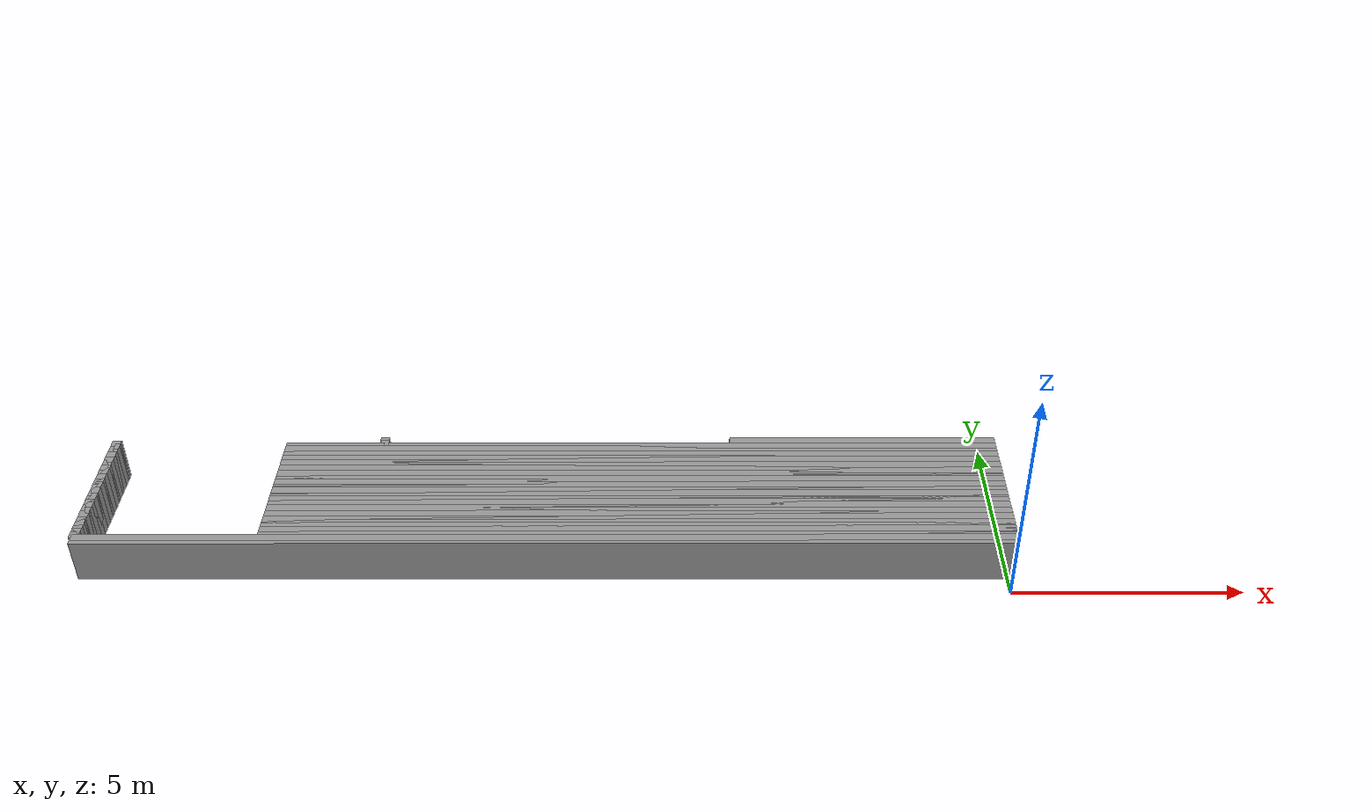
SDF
<sdf version="1.6">
 <world name="GridMap">
  <model name="GridMap">
   <link name="Wall_(99.5,0.0)">
    <collision name="Wall_(99.5,0.0)_Collision">
     <geometry><box><size>19.9 0.2 1.0</size></box></geometry>
     <pose>-9.95 0.0 0.5 0 -0 0</pose>
    </collision>
    <visual name="Wall_(99.5,0.0)_Visual">
     <geometry><box><size>19.9 0.2 1.0</size></box></geometry>
     <pose>-9.95 0.0 0.5 0 -0 0</pose>
     <material>
      <script><uri>file://media/materials/scripts/gazebo.material</uri><name>Gazebo/Grey</name></script>
      <ambient>1 1 1 1</ambient>
     </material>
     <meta><layer>0</layer></meta>
    </visual>
    <pose>0 0 0.5 0 -0 0</pose>
   </link>
   <link name="Wall_(99.5,1.0)">
    <collision name="Wall_(99.5,1.0)_Collision">
     <geometry><box><size>19.9 0.2 1.0</size></box></geometry>
     <pose>-9.95 0.1 0.5 0 -0 0</pose>
    </collision>
    <visual name="Wall_(99.5,1.0)_Visual">
     <geometry><box><size>19.9 0.2 1.0</size></box></geometry>
     <pose>-9.95 0.1 0.5 0 -0 0</pose>
     <material>
      <script><uri>file://media/materials/scripts/gazebo.material</uri><name>Gazebo/Grey</name></script>
      <ambient>1 1 1 1</ambient>
     </material>
     <meta><layer>0</layer></meta>
    </visual>
    <pose>0 0 0.5 0 -0 0</pose>
   </link>
   <link name="Wall_(80.0,2.0)">
    <collision name="Wall_(80.0,2.0)_Collision">
     <geometry><box><size>16.0 0.2 1.0</size></box></geometry>
     <pose>-8.0 0.2 0.5 0 -0 0</pose>
    </collision>
    <visual name="Wall_(80.0,2.0)_Visual">
     <geometry><box><size>16.0 0.2 1.0</size></box></geometry>
     <pose>-8.0 0.2 0.5 0 -0 0</pose>
     <material>
      <script><uri>file://media/materials/scripts/gazebo.material</uri><name>Gazebo/Grey</name></script>
      <ambient>1 1 1 1</ambient>
     </material>
     <meta><layer>0</layer></meta>
    </visual>
    <pose>0 0 0.5 0 -0 0</pose>
   </link>
   <link name="Wall_(198.5,2.0)">
    <collision name="Wall_(198.5,2.0)_Collision">
     <geometry><box><size>0.2 0.2 1.0</size></box></geometry>
     <pose>-19.85 0.2 0.5 0 -0 0</pose>
    </collision>
    <visual name="Wall_(198.5,2.0)_Visual">
     <geometry><box><size>0.2 0.2 1.0</size></box></geometry>
     <pose>-19.85 0.2 0.5 0 -0 0</pose>
     <material>
      <script><uri>file://media/materials/scripts/gazebo.material</uri><name>Gazebo/Grey</name></script>
      <ambient>1 1 1 1</ambient>
     </material>
     <meta><layer>0</layer></meta>
    </visual>
    <pose>0 0 0.5 0 -0 0</pose>
   </link>
   <link name="Wall_(80.0,3.0)">
    <collision name="Wall_(80.0,3.0)_Collision">
     <geometry><box><size>16.0 0.2 1.0</size></box></geometry>
     <pose>-8.0 0.3 0.5 0 -0 0</pose>
    </collision>
    <visual name="Wall_(80.0,3.0)_Visual">
     <geometry><box><size>16.0 0.2 1.0</size></box></geometry>
     <pose>-8.0 0.3 0.5 0 -0 0</pose>
     <material>
      <script><uri>file://media/materials/scripts/gazebo.material</uri><name>Gazebo/Grey</name></script>
      <ambient>1 1 1 1</ambient>
     </material>
     <meta><layer>0</layer></meta>
    </visual>
    <pose>0 0 0.5 0 -0 0</pose>
   </link>
   <link name="Wall_(198.5,3.0)">
    <collision name="Wall_(198.5,3.0)_Collision">
     <geometry><box><size>0.2 0.2 1.0</size></box></geometry>
     <pose>-19.85 0.3 0.5 0 -0 0</pose>
    </collision>
    <visual name="Wall_(198.5,3.0)_Visual">
     <geometry><box><size>0.2 0.2 1.0</size></box></geometry>
     <pose>-19.85 0.3 0.5 0 -0 0</pose>
     <material>
      <script><uri>file://media/materials/scripts/gazebo.material</uri><name>Gazebo/Grey</name></script>
      <ambient>1 1 1 1</ambient>
     </material>
     <meta><layer>0</layer></meta>
    </visual>
    <pose>0 0 0.5 0 -0 0</pose>
   </link>
   <link name="Wall_(80.0,4.0)">
    <collision name="Wall_(80.0,4.0)_Collision">
     <geometry><box><size>16.0 0.2 1.0</size></box></geometry>
     <pose>-8.0 0.4 0.5 0 -0 0</pose>
    </collision>
    <visual name="Wall_(80.0,4.0)_Visual">
     <geometry><box><size>16.0 0.2 1.0</size></box></geometry>
     <pose>-8.0 0.4 0.5 0 -0 0</pose>
     <material>
      <script><uri>file://media/materials/scripts/gazebo.material</uri><name>Gazebo/Grey</name></script>
      <ambient>1 1 1 1</ambient>
     </material>
     <meta><layer>0</layer></meta>
    </visual>
    <pose>0 0 0.5 0 -0 0</pose>
   </link>
   <link name="Wall_(198.5,4.0)">
    <collision name="Wall_(198.5,4.0)_Collision">
     <geometry><box><size>0.2 0.2 1.0</size></box></geometry>
     <pose>-19.85 0.4 0.5 0 -0 0</pose>
    </collision>
    <visual name="Wall_(198.5,4.0)_Visual">
     <geometry><box><size>0.2 0.2 1.0</size></box></geometry>
     <pose>-19.85 0.4 0.5 0 -0 0</pose>
     <material>
      <script><uri>file://media/materials/scripts/gazebo.material</uri><name>Gazebo/Grey</name></script>
      <ambient>1 1 1 1</ambient>
     </material>
     <meta><layer>0</layer></meta>
    </visual>
    <pose>0 0 0.5 0 -0 0</pose>
   </link>
   <link name="Wall_(80.0,5.0)">
    <collision name="Wall_(80.0,5.0)_Collision">
     <geometry><box><size>16.0 0.2 1.0</size></box></geometry>
     <pose>-8.0 0.5 0.5 0 -0 0</pose>
    </collision>
    <visual name="Wall_(80.0,5.0)_Visual">
     <geometry><box><size>16.0 0.2 1.0</size></box></geometry>
     <pose>-8.0 0.5 0.5 0 -0 0</pose>
     <material>
      <script><uri>file://media/materials/scripts/gazebo.material</uri><name>Gazebo/Grey</name></script>
      <ambient>1 1 1 1</ambient>
     </material>
     <meta><layer>0</layer></meta>
    </visual>
    <pose>0 0 0.5 0 -0 0</pose>
   </link>
   <link name="Wall_(198.5,5.0)">
    <collision name="Wall_(198.5,5.0)_Collision">
     <geometry><box><size>0.2 0.2 1.0</size></box></geometry>
     <pose>-19.85 0.5 0.5 0 -0 0</pose>
    </collision>
    <visual name="Wall_(198.5,5.0)_Visual">
     <geometry><box><size>0.2 0.2 1.0</size></box></geometry>
     <pose>-19.85 0.5 0.5 0 -0 0</pose>
     <material>
      <script><uri>file://media/materials/scripts/gazebo.material</uri><name>Gazebo/Grey</name></script>
      <ambient>1 1 1 1</ambient>
     </material>
     <meta><layer>0</layer></meta>
    </visual>
    <pose>0 0 0.5 0 -0 0</pose>
   </link>
   <link name="Wall_(80.0,6.0)">
    <collision name="Wall_(80.0,6.0)_Collision">
     <geometry><box><size>16.0 0.2 1.0</size></box></geometry>
     <pose>-8.0 0.6 0.5 0 -0 0</pose>
    </collision>
    <visual name="Wall_(80.0,6.0)_Visual">
     <geometry><box><size>16.0 0.2 1.0</size></box></geometry>
     <pose>-8.0 0.6 0.5 0 -0 0</pose>
     <material>
      <script><uri>file://media/materials/scripts/gazebo.material</uri><name>Gazebo/Grey</name></script>
      <ambient>1 1 1 1</ambient>
     </material>
     <meta><layer>0</layer></meta>
    </visual>
    <pose>0 0 0.5 0 -0 0</pose>
   </link>
   <link name="Wall_(198.5,6.0)">
    <collision name="Wall_(198.5,6.0)_Collision">
     <geometry><box><size>0.2 0.2 1.0</size></box></geometry>
     <pose>-19.85 0.6 0.5 0 -0 0</pose>
    </collision>
    <visual name="Wall_(198.5,6.0)_Visual">
     <geometry><box><size>0.2 0.2 1.0</size></box></geometry>
     <pose>-19.85 0.6 0.5 0 -0 0</pose>
     <material>
      <script><uri>file://media/materials/scripts/gazebo.material</uri><name>Gazebo/Grey</name></script>
      <ambient>1 1 1 1</ambient>
     </material>
     <meta><layer>0</layer></meta>
    </visual>
    <pose>0 0 0.5 0 -0 0</pose>
   </link>
   <link name="Wall_(80.0,7.0)">
    <collision name="Wall_(80.0,7.0)_Collision">
     <geometry><box><size>16.0 0.2 1.0</size></box></geometry>
     <pose>-8.0 0.7 0.5 0 -0 0</pose>
    </collision>
    <visual name="Wall_(80.0,7.0)_Visual">
     <geometry><box><size>16.0 0.2 1.0</size></box></geometry>
     <pose>-8.0 0.7 0.5 0 -0 0</pose>
     <material>
      <script><uri>file://media/materials/scripts/gazebo.material</uri><name>Gazebo/Grey</name></script>
      <ambient>1 1 1 1</ambient>
     </material>
     <meta><layer>0</layer></meta>
    </visual>
    <pose>0 0 0.5 0 -0 0</pose>
   </link>
   <link name="Wall_(198.5,7.0)">
    <collision name="Wall_(198.5,7.0)_Collision">
     <geometry><box><size>0.2 0.2 1.0</size></box></geometry>
     <pose>-19.85 0.7 0.5 0 -0 0</pose>
    </collision>
    <visual name="Wall_(198.5,7.0)_Visual">
     <geometry><box><size>0.2 0.2 1.0</size></box></geometry>
     <pose>-19.85 0.7 0.5 0 -0 0</pose>
     <material>
      <script><uri>file://media/materials/scripts/gazebo.material</uri><name>Gazebo/Grey</name></script>
      <ambient>1 1 1 1</ambient>
     </material>
     <meta><layer>0</layer></meta>
    </visual>
    <pose>0 0 0.5 0 -0 0</pose>
   </link>
   <link name="Wall_(80.0,8.0)">
    <collision name="Wall_(80.0,8.0)_Collision">
     <geometry><box><size>16.0 0.2 1.0</size></box></geometry>
     <pose>-8.0 0.8 0.5 0 -0 0</pose>
    </collision>
    <visual name="Wall_(80.0,8.0)_Visual">
     <geometry><box><size>16.0 0.2 1.0</size></box></geometry>
     <pose>-8.0 0.8 0.5 0 -0 0</pose>
     <material>
      <script><uri>file://media/materials/scripts/gazebo.material</uri><name>Gazebo/Grey</name></script>
      <ambient>1 1 1 1</ambient>
     </material>
     <meta><layer>0</layer></meta>
    </visual>
    <pose>0 0 0.5 0 -0 0</pose>
   </link>
   <link name="Wall_(198.5,8.0)">
    <collision name="Wall_(198.5,8.0)_Collision">
     <geometry><box><size>0.2 0.2 1.0</size></box></geometry>
     <pose>-19.85 0.8 0.5 0 -0 0</pose>
    </collision>
    <visual name="Wall_(198.5,8.0)_Visual">
     <geometry><box><size>0.2 0.2 1.0</size></box></geometry>
     <pose>-19.85 0.8 0.5 0 -0 0</pose>
     <material>
      <script><uri>file://media/materials/scripts/gazebo.material</uri><name>Gazebo/Grey</name></script>
      <ambient>1 1 1 1</ambient>
     </material>
     <meta><layer>0</layer></meta>
    </visual>
    <pose>0 0 0.5 0 -0 0</pose>
   </link>
   <link name="Wall_(80.0,9.0)">
    <collision name="Wall_(80.0,9.0)_Collision">
     <geometry><box><size>16.0 0.2 1.0</size></box></geometry>
     <pose>-8.0 0.9 0.5 0 -0 0</pose>
    </collision>
    <visual name="Wall_(80.0,9.0)_Visual">
     <geometry><box><size>16.0 0.2 1.0</size></box></geometry>
     <pose>-8.0 0.9 0.5 0 -0 0</pose>
     <material>
      <script><uri>file://media/materials/scripts/gazebo.material</uri><name>Gazebo/Grey</name></script>
      <ambient>1 1 1 1</ambient>
     </material>
     <meta><layer>0</layer></meta>
    </visual>
    <pose>0 0 0.5 0 -0 0</pose>
   </link>
   <link name="Wall_(198.5,9.0)">
    <collision name="Wall_(198.5,9.0)_Collision">
     <geometry><box><size>0.2 0.2 1.0</size></box></geometry>
     <pose>-19.85 0.9 0.5 0 -0 0</pose>
    </collision>
    <visual name="Wall_(198.5,9.0)_Visual">
     <geometry><box><size>0.2 0.2 1.0</size></box></geometry>
     <pose>-19.85 0.9 0.5 0 -0 0</pose>
     <material>
      <script><uri>file://media/materials/scripts/gazebo.material</uri><name>Gazebo/Grey</name></script>
      <ambient>1 1 1 1</ambient>
     </material>
     <meta><layer>0</layer></meta>
    </visual>
    <pose>0 0 0.5 0 -0 0</pose>
   </link>
   <link name="Wall_(80.0,10.0)">
    <collision name="Wall_(80.0,10.0)_Collision">
     <geometry><box><size>16.0 0.2 1.0</size></box></geometry>
     <pose>-8.0 1.0 0.5 0 -0 0</pose>
    </collision>
    <visual name="Wall_(80.0,10.0)_Visual">
     <geometry><box><size>16.0 0.2 1.0</size></box></geometry>
     <pose>-8.0 1.0 0.5 0 -0 0</pose>
     <material>
      <script><uri>file://media/materials/scripts/gazebo.material</uri><name>Gazebo/Grey</name></script>
      <ambient>1 1 1 1</ambient>
     </material>
     <meta><layer>0</layer></meta>
    </visual>
    <pose>0 0 0.5 0 -0 0</pose>
   </link>
   <link name="Wall_(198.5,10.0)">
    <collision name="Wall_(198.5,10.0)_Collision">
     <geometry><box><size>0.2 0.2 1.0</size></box></geometry>
     <pose>-19.85 1.0 0.5 0 -0 0</pose>
    </collision>
    <visual name="Wall_(198.5,10.0)_Visual">
     <geometry><box><size>0.2 0.2 1.0</size></box></geometry>
     <pose>-19.85 1.0 0.5 0 -0 0</pose>
     <material>
      <script><uri>file://media/materials/scripts/gazebo.material</uri><name>Gazebo/Grey</name></script>
      <ambient>1 1 1 1</ambient>
     </material>
     <meta><layer>0</layer></meta>
    </visual>
    <pose>0 0 0.5 0 -0 0</pose>
   </link>
   <link name="Wall_(80.0,11.0)">
    <collision name="Wall_(80.0,11.0)_Collision">
     <geometry><box><size>16.0 0.2 1.0</size></box></geometry>
     <pose>-8.0 1.1 0.5 0 -0 0</pose>
    </collision>
    <visual name="Wall_(80.0,11.0)_Visual">
     <geometry><box><size>16.0 0.2 1.0</size></box></geometry>
     <pose>-8.0 1.1 0.5 0 -0 0</pose>
     <material>
      <script><uri>file://media/materials/scripts/gazebo.material</uri><name>Gazebo/Grey</name></script>
      <ambient>1 1 1 1</ambient>
     </material>
     <meta><layer>0</layer></meta>
    </visual>
    <pose>0 0 0.5 0 -0 0</pose>
   </link>
   <link name="Wall_(198.5,11.0)">
    <collision name="Wall_(198.5,11.0)_Collision">
     <geometry><box><size>0.2 0.2 1.0</size></box></geometry>
     <pose>-19.85 1.1 0.5 0 -0 0</pose>
    </collision>
    <visual name="Wall_(198.5,11.0)_Visual">
     <geometry><box><size>0.2 0.2 1.0</size></box></geometry>
     <pose>-19.85 1.1 0.5 0 -0 0</pose>
     <material>
      <script><uri>file://media/materials/scripts/gazebo.material</uri><name>Gazebo/Grey</name></script>
      <ambient>1 1 1 1</ambient>
     </material>
     <meta><layer>0</layer></meta>
    </visual>
    <pose>0 0 0.5 0 -0 0</pose>
   </link>
   <link name="Wall_(80.0,12.0)">
    <collision name="Wall_(80.0,12.0)_Collision">
     <geometry><box><size>16.0 0.2 1.0</size></box></geometry>
     <pose>-8.0 1.2 0.5 0 -0 0</pose>
    </collision>
    <visual name="Wall_(80.0,12.0)_Visual">
     <geometry><box><size>16.0 0.2 1.0</size></box></geometry>
     <pose>-8.0 1.2 0.5 0 -0 0</pose>
     <material>
      <script><uri>file://media/materials/scripts/gazebo.material</uri><name>Gazebo/Grey</name></script>
      <ambient>1 1 1 1</ambient>
     </material>
     <meta><layer>0</layer></meta>
    </visual>
    <pose>0 0 0.5 0 -0 0</pose>
   </link>
   <link name="Wall_(198.5,12.0)">
    <collision name="Wall_(198.5,12.0)_Collision">
     <geometry><box><size>0.2 0.2 1.0</size></box></geometry>
     <pose>-19.85 1.2 0.5 0 -0 0</pose>
    </collision>
    <visual name="Wall_(198.5,12.0)_Visual">
     <geometry><box><size>0.2 0.2 1.0</size></box></geometry>
     <pose>-19.85 1.2 0.5 0 -0 0</pose>
     <material>
      <script><uri>file://media/materials/scripts/gazebo.material</uri><name>Gazebo/Grey</name></script>
      <ambient>1 1 1 1</ambient>
     </material>
     <meta><layer>0</layer></meta>
    </visual>
    <pose>0 0 0.5 0 -0 0</pose>
   </link>
   <link name="Wall_(80.0,13.0)">
    <collision name="Wall_(80.0,13.0)_Collision">
     <geometry><box><size>16.0 0.2 1.0</size></box></geometry>
     <pose>-8.0 1.3 0.5 0 -0 0</pose>
    </collision>
    <visual name="Wall_(80.0,13.0)_Visual">
     <geometry><box><size>16.0 0.2 1.0</size></box></geometry>
     <pose>-8.0 1.3 0.5 0 -0 0</pose>
     <material>
      <script><uri>file://media/materials/scripts/gazebo.material</uri><name>Gazebo/Grey</name></script>
      <ambient>1 1 1 1</ambient>
     </material>
     <meta><layer>0</layer></meta>
    </visual>
    <pose>0 0 0.5 0 -0 0</pose>
   </link>
   <link name="Wall_(198.5,13.0)">
    <collision name="Wall_(198.5,13.0)_Collision">
     <geometry><box><size>0.2 0.2 1.0</size></box></geometry>
     <pose>-19.85 1.3 0.5 0 -0 0</pose>
    </collision>
    <visual name="Wall_(198.5,13.0)_Visual">
     <geometry><box><size>0.2 0.2 1.0</size></box></geometry>
     <pose>-19.85 1.3 0.5 0 -0 0</pose>
     <material>
      <script><uri>file://media/materials/scripts/gazebo.material</uri><name>Gazebo/Grey</name></script>
      <ambient>1 1 1 1</ambient>
     </material>
     <meta><layer>0</layer></meta>
    </visual>
    <pose>0 0 0.5 0 -0 0</pose>
   </link>
   <link name="Wall_(80.0,14.0)">
    <collision name="Wall_(80.0,14.0)_Collision">
     <geometry><box><size>16.0 0.2 1.0</size></box></geometry>
     <pose>-8.0 1.4 0.5 0 -0 0</pose>
    </collision>
    <visual name="Wall_(80.0,14.0)_Visual">
     <geometry><box><size>16.0 0.2 1.0</size></box></geometry>
     <pose>-8.0 1.4 0.5 0 -0 0</pose>
     <material>
      <script><uri>file://media/materials/scripts/gazebo.material</uri><name>Gazebo/Grey</name></script>
      <ambient>1 1 1 1</ambient>
     </material>
     <meta><layer>0</layer></meta>
    </visual>
    <pose>0 0 0.5 0 -0 0</pose>
   </link>
   <link name="Wall_(198.5,14.0)">
    <collision name="Wall_(198.5,14.0)_Collision">
     <geometry><box><size>0.2 0.2 1.0</size></box></geometry>
     <pose>-19.85 1.4 0.5 0 -0 0</pose>
    </collision>
    <visual name="Wall_(198.5,14.0)_Visual">
     <geometry><box><size>0.2 0.2 1.0</size></box></geometry>
     <pose>-19.85 1.4 0.5 0 -0 0</pose>
     <material>
      <script><uri>file://media/materials/scripts/gazebo.material</uri><name>Gazebo/Grey</name></script>
      <ambient>1 1 1 1</ambient>
     </material>
     <meta><layer>0</layer></meta>
    </visual>
    <pose>0 0 0.5 0 -0 0</pose>
   </link>
   <link name="Wall_(80.0,15.0)">
    <collision name="Wall_(80.0,15.0)_Collision">
     <geometry><box><size>16.0 0.2 1.0</size></box></geometry>
     <pose>-8.0 1.5 0.5 0 -0 0</pose>
    </collision>
    <visual name="Wall_(80.0,15.0)_Visual">
     <geometry><box><size>16.0 0.2 1.0</size></box></geometry>
     <pose>-8.0 1.5 0.5 0 -0 0</pose>
     <material>
      <script><uri>file://media/materials/scripts/gazebo.material</uri><name>Gazebo/Grey</name></script>
      <ambient>1 1 1 1</ambient>
     </material>
     <meta><layer>0</layer></meta>
    </visual>
    <pose>0 0 0.5 0 -0 0</pose>
   </link>
   <link name="Wall_(198.5,15.0)">
    <collision name="Wall_(198.5,15.0)_Collision">
     <geometry><box><size>0.2 0.2 1.0</size></box></geometry>
     <pose>-19.85 1.5 0.5 0 -0 0</pose>
    </collision>
    <visual name="Wall_(198.5,15.0)_Visual">
     <geometry><box><size>0.2 0.2 1.0</size></box></geometry>
     <pose>-19.85 1.5 0.5 0 -0 0</pose>
     <material>
      <script><uri>file://media/materials/scripts/gazebo.material</uri><name>Gazebo/Grey</name></script>
      <ambient>1 1 1 1</ambient>
     </material>
     <meta><layer>0</layer></meta>
    </visual>
    <pose>0 0 0.5 0 -0 0</pose>
   </link>
   <link name="Wall_(80.0,16.0)">
    <collision name="Wall_(80.0,16.0)_Collision">
     <geometry><box><size>16.0 0.2 1.0</size></box></geometry>
     <pose>-8.0 1.6 0.5 0 -0 0</pose>
    </collision>
    <visual name="Wall_(80.0,16.0)_Visual">
     <geometry><box><size>16.0 0.2 1.0</size></box></geometry>
     <pose>-8.0 1.6 0.5 0 -0 0</pose>
     <material>
      <script><uri>file://media/materials/scripts/gazebo.material</uri><name>Gazebo/Grey</name></script>
      <ambient>1 1 1 1</ambient>
     </material>
     <meta><layer>0</layer></meta>
    </visual>
    <pose>0 0 0.5 0 -0 0</pose>
   </link>
   <link name="Wall_(198.5,16.0)">
    <collision name="Wall_(198.5,16.0)_Collision">
     <geometry><box><size>0.2 0.2 1.0</size></box></geometry>
     <pose>-19.85 1.6 0.5 0 -0 0</pose>
    </collision>
    <visual name="Wall_(198.5,16.0)_Visual">
     <geometry><box><size>0.2 0.2 1.0</size></box></geometry>
     <pose>-19.85 1.6 0.5 0 -0 0</pose>
     <material>
      <script><uri>file://media/materials/scripts/gazebo.material</uri><name>Gazebo/Grey</name></script>
      <ambient>1 1 1 1</ambient>
     </material>
     <meta><layer>0</layer></meta>
    </visual>
    <pose>0 0 0.5 0 -0 0</pose>
   </link>
   <link name="Wall_(80.0,17.0)">
    <collision name="Wall_(80.0,17.0)_Collision">
     <geometry><box><size>16.0 0.2 1.0</size></box></geometry>
     <pose>-8.0 1.7 0.5 0 -0 0</pose>
    </collision>
    <visual name="Wall_(80.0,17.0)_Visual">
     <geometry><box><size>16.0 0.2 1.0</size></box></geometry>
     <pose>-8.0 1.7 0.5 0 -0 0</pose>
     <material>
      <script><uri>file://media/materials/scripts/gazebo.material</uri><name>Gazebo/Grey</name></script>
      <ambient>1 1 1 1</ambient>
     </material>
     <meta><layer>0</layer></meta>
    </visual>
    <pose>0 0 0.5 0 -0 0</pose>
   </link>
   <link name="Wall_(198.5,17.0)">
    <collision name="Wall_(198.5,17.0)_Collision">
     <geometry><box><size>0.2 0.2 1.0</size></box></geometry>
     <pose>-19.85 1.7 0.5 0 -0 0</pose>
    </collision>
    <visual name="Wall_(198.5,17.0)_Visual">
     <geometry><box><size>0.2 0.2 1.0</size></box></geometry>
     <pose>-19.85 1.7 0.5 0 -0 0</pose>
     <material>
      <script><uri>file://media/materials/scripts/gazebo.material</uri><name>Gazebo/Grey</name></script>
      <ambient>1 1 1 1</ambient>
     </material>
     <meta><layer>0</layer></meta>
    </visual>
    <pose>0 0 0.5 0 -0 0</pose>
   </link>
   <link name="Wall_(80.0,18.0)">
    <collision name="Wall_(80.0,18.0)_Collision">
     <geometry><box><size>16.0 0.2 1.0</size></box></geometry>
     <pose>-8.0 1.8 0.5 0 -0 0</pose>
    </collision>
    <visual name="Wall_(80.0,18.0)_Visual">
     <geometry><box><size>16.0 0.2 1.0</size></box></geometry>
     <pose>-8.0 1.8 0.5 0 -0 0</pose>
     <material>
      <script><uri>file://media/materials/scripts/gazebo.material</uri><name>Gazebo/Grey</name></script>
      <ambient>1 1 1 1</ambient>
     </material>
     <meta><layer>0</layer></meta>
    </visual>
    <pose>0 0 0.5 0 -0 0</pose>
   </link>
   <link name="Wall_(198.5,18.0)">
    <collision name="Wall_(198.5,18.0)_Collision">
     <geometry><box><size>0.2 0.2 1.0</size></box></geometry>
     <pose>-19.85 1.8 0.5 0 -0 0</pose>
    </collision>
    <visual name="Wall_(198.5,18.0)_Visual">
     <geometry><box><size>0.2 0.2 1.0</size></box></geometry>
     <pose>-19.85 1.8 0.5 0 -0 0</pose>
     <material>
      <script><uri>file://media/materials/scripts/gazebo.material</uri><name>Gazebo/Grey</name></script>
      <ambient>1 1 1 1</ambient>
     </material>
     <meta><layer>0</layer></meta>
    </visual>
    <pose>0 0 0.5 0 -0 0</pose>
   </link>
   <link name="Wall_(80.0,19.0)">
    <collision name="Wall_(80.0,19.0)_Collision">
     <geometry><box><size>16.0 0.2 1.0</size></box></geometry>
     <pose>-8.0 1.9 0.5 0 -0 0</pose>
    </collision>
    <visual name="Wall_(80.0,19.0)_Visual">
     <geometry><box><size>16.0 0.2 1.0</size></box></geometry>
     <pose>-8.0 1.9 0.5 0 -0 0</pose>
     <material>
      <script><uri>file://media/materials/scripts/gazebo.material</uri><name>Gazebo/Grey</name></script>
      <ambient>1 1 1 1</ambient>
     </material>
     <meta><layer>0</layer></meta>
    </visual>
    <pose>0 0 0.5 0 -0 0</pose>
   </link>
   <link name="Wall_(198.5,19.0)">
    <collision name="Wall_(198.5,19.0)_Collision">
     <geometry><box><size>0.2 0.2 1.0</size></box></geometry>
     <pose>-19.85 1.9 0.5 0 -0 0</pose>
    </collision>
    <visual name="Wall_(198.5,19.0)_Visual">
     <geometry><box><size>0.2 0.2 1.0</size></box></geometry>
     <pose>-19.85 1.9 0.5 0 -0 0</pose>
     <material>
      <script><uri>file://media/materials/scripts/gazebo.material</uri><name>Gazebo/Grey</name></script>
      <ambient>1 1 1 1</ambient>
     </material>
     <meta><layer>0</layer></meta>
    </visual>
    <pose>0 0 0.5 0 -0 0</pose>
   </link>
   <link name="Wall_(80.0,20.0)">
    <collision name="Wall_(80.0,20.0)_Collision">
     <geometry><box><size>16.0 0.2 1.0</size></box></geometry>
     <pose>-8.0 2.0 0.5 0 -0 0</pose>
    </collision>
    <visual name="Wall_(80.0,20.0)_Visual">
     <geometry><box><size>16.0 0.2 1.0</size></box></geometry>
     <pose>-8.0 2.0 0.5 0 -0 0</pose>
     <material>
      <script><uri>file://media/materials/scripts/gazebo.material</uri><name>Gazebo/Grey</name></script>
      <ambient>1 1 1 1</ambient>
     </material>
     <meta><layer>0</layer></meta>
    </visual>
    <pose>0 0 0.5 0 -0 0</pose>
   </link>
   <link name="Wall_(198.5,20.0)">
    <collision name="Wall_(198.5,20.0)_Collision">
     <geometry><box><size>0.2 0.2 1.0</size></box></geometry>
     <pose>-19.85 2.0 0.5 0 -0 0</pose>
    </collision>
    <visual name="Wall_(198.5,20.0)_Visual">
     <geometry><box><size>0.2 0.2 1.0</size></box></geometry>
     <pose>-19.85 2.0 0.5 0 -0 0</pose>
     <material>
      <script><uri>file://media/materials/scripts/gazebo.material</uri><name>Gazebo/Grey</name></script>
      <ambient>1 1 1 1</ambient>
     </material>
     <meta><layer>0</layer></meta>
    </visual>
    <pose>0 0 0.5 0 -0 0</pose>
   </link>
   <link name="Wall_(80.0,21.0)">
    <collision name="Wall_(80.0,21.0)_Collision">
     <geometry><box><size>16.0 0.2 1.0</size></box></geometry>
     <pose>-8.0 2.1 0.5 0 -0 0</pose>
    </collision>
    <visual name="Wall_(80.0,21.0)_Visual">
     <geometry><box><size>16.0 0.2 1.0</size></box></geometry>
     <pose>-8.0 2.1 0.5 0 -0 0</pose>
     <material>
      <script><uri>file://media/materials/scripts/gazebo.material</uri><name>Gazebo/Grey</name></script>
      <ambient>1 1 1 1</ambient>
     </material>
     <meta><layer>0</layer></meta>
    </visual>
    <pose>0 0 0.5 0 -0 0</pose>
   </link>
   <link name="Wall_(198.5,21.0)">
    <collision name="Wall_(198.5,21.0)_Collision">
     <geometry><box><size>0.2 0.2 1.0</size></box></geometry>
     <pose>-19.85 2.1 0.5 0 -0 0</pose>
    </collision>
    <visual name="Wall_(198.5,21.0)_Visual">
     <geometry><box><size>0.2 0.2 1.0</size></box></geometry>
     <pose>-19.85 2.1 0.5 0 -0 0</pose>
     <material>
      <script><uri>file://media/materials/scripts/gazebo.material</uri><name>Gazebo/Grey</name></script>
      <ambient>1 1 1 1</ambient>
     </material>
     <meta><layer>0</layer></meta>
    </visual>
    <pose>0 0 0.5 0 -0 0</pose>
   </link>
   <link name="Wall_(80.0,22.0)">
    <collision name="Wall_(80.0,22.0)_Collision">
     <geometry><box><size>16.0 0.2 1.0</size></box></geometry>
     <pose>-8.0 2.2 0.5 0 -0 0</pose>
    </collision>
    <visual name="Wall_(80.0,22.0)_Visual">
     <geometry><box><size>16.0 0.2 1.0</size></box></geometry>
     <pose>-8.0 2.2 0.5 0 -0 0</pose>
     <material>
      <script><uri>file://media/materials/scripts/gazebo.material</uri><name>Gazebo/Grey</name></script>
      <ambient>1 1 1 1</ambient>
     </material>
     <meta><layer>0</layer></meta>
    </visual>
    <pose>0 0 0.5 0 -0 0</pose>
   </link>
   <link name="Wall_(198.5,22.0)">
    <collision name="Wall_(198.5,22.0)_Collision">
     <geometry><box><size>0.2 0.2 1.0</size></box></geometry>
     <pose>-19.85 2.2 0.5 0 -0 0</pose>
    </collision>
    <visual name="Wall_(198.5,22.0)_Visual">
     <geometry><box><size>0.2 0.2 1.0</size></box></geometry>
     <pose>-19.85 2.2 0.5 0 -0 0</pose>
     <material>
      <script><uri>file://media/materials/scripts/gazebo.material</uri><name>Gazebo/Grey</name></script>
      <ambient>1 1 1 1</ambient>
     </material>
     <meta><layer>0</layer></meta>
    </visual>
    <pose>0 0 0.5 0 -0 0</pose>
   </link>
   <link name="Wall_(80.0,23.0)">
    <collision name="Wall_(80.0,23.0)_Collision">
     <geometry><box><size>16.0 0.2 1.0</size></box></geometry>
     <pose>-8.0 2.3 0.5 0 -0 0</pose>
    </collision>
    <visual name="Wall_(80.0,23.0)_Visual">
     <geometry><box><size>16.0 0.2 1.0</size></box></geometry>
     <pose>-8.0 2.3 0.5 0 -0 0</pose>
     <material>
      <script><uri>file://media/materials/scripts/gazebo.material</uri><name>Gazebo/Grey</name></script>
      <ambient>1 1 1 1</ambient>
     </material>
     <meta><layer>0</layer></meta>
    </visual>
    <pose>0 0 0.5 0 -0 0</pose>
   </link>
   <link name="Wall_(198.5,23.0)">
    <collision name="Wall_(198.5,23.0)_Collision">
     <geometry><box><size>0.2 0.2 1.0</size></box></geometry>
     <pose>-19.85 2.3 0.5 0 -0 0</pose>
    </collision>
    <visual name="Wall_(198.5,23.0)_Visual">
     <geometry><box><size>0.2 0.2 1.0</size></box></geometry>
     <pose>-19.85 2.3 0.5 0 -0 0</pose>
     <material>
      <script><uri>file://media/materials/scripts/gazebo.material</uri><name>Gazebo/Grey</name></script>
      <ambient>1 1 1 1</ambient>
     </material>
     <meta><layer>0</layer></meta>
    </visual>
    <pose>0 0 0.5 0 -0 0</pose>
   </link>
   <link name="Wall_(80.0,24.0)">
    <collision name="Wall_(80.0,24.0)_Collision">
     <geometry><box><size>16.0 0.2 1.0</size></box></geometry>
     <pose>-8.0 2.4 0.5 0 -0 0</pose>
    </collision>
    <visual name="Wall_(80.0,24.0)_Visual">
     <geometry><box><size>16.0 0.2 1.0</size></box></geometry>
     <pose>-8.0 2.4 0.5 0 -0 0</pose>
     <material>
      <script><uri>file://media/materials/scripts/gazebo.material</uri><name>Gazebo/Grey</name></script>
      <ambient>1 1 1 1</ambient>
     </material>
     <meta><layer>0</layer></meta>
    </visual>
    <pose>0 0 0.5 0 -0 0</pose>
   </link>
   <link name="Wall_(198.5,24.0)">
    <collision name="Wall_(198.5,24.0)_Collision">
     <geometry><box><size>0.2 0.2 1.0</size></box></geometry>
     <pose>-19.85 2.4 0.5 0 -0 0</pose>
    </collision>
    <visual name="Wall_(198.5,24.0)_Visual">
     <geometry><box><size>0.2 0.2 1.0</size></box></geometry>
     <pose>-19.85 2.4 0.5 0 -0 0</pose>
     <material>
      <script><uri>file://media/materials/scripts/gazebo.material</uri><name>Gazebo/Grey</name></script>
      <ambient>1 1 1 1</ambient>
     </material>
     <meta><layer>0</layer></meta>
    </visual>
    <pose>0 0 0.5 0 -0 0</pose>
   </link>
   <link name="Wall_(80.0,25.0)">
    <collision name="Wall_(80.0,25.0)_Collision">
     <geometry><box><size>16.0 0.2 1.0</size></box></geometry>
     <pose>-8.0 2.5 0.5 0 -0 0</pose>
    </collision>
    <visual name="Wall_(80.0,25.0)_Visual">
     <geometry><box><size>16.0 0.2 1.0</size></box></geometry>
     <pose>-8.0 2.5 0.5 0 -0 0</pose>
     <material>
      <script><uri>file://media/materials/scripts/gazebo.material</uri><name>Gazebo/Grey</name></script>
      <ambient>1 1 1 1</ambient>
     </material>
     <meta><layer>0</layer></meta>
    </visual>
    <pose>0 0 0.5 0 -0 0</pose>
   </link>
   <link name="Wall_(198.5,25.0)">
    <collision name="Wall_(198.5,25.0)_Collision">
     <geometry><box><size>0.2 0.2 1.0</size></box></geometry>
     <pose>-19.85 2.5 0.5 0 -0 0</pose>
    </collision>
    <visual name="Wall_(198.5,25.0)_Visual">
     <geometry><box><size>0.2 0.2 1.0</size></box></geometry>
     <pose>-19.85 2.5 0.5 0 -0 0</pose>
     <material>
      <script><uri>file://media/materials/scripts/gazebo.material</uri><name>Gazebo/Grey</name></script>
      <ambient>1 1 1 1</ambient>
     </material>
     <meta><layer>0</layer></meta>
    </visual>
    <pose>0 0 0.5 0 -0 0</pose>
   </link>
   <link name="Wall_(80.0,26.0)">
    <collision name="Wall_(80.0,26.0)_Collision">
     <geometry><box><size>16.0 0.2 1.0</size></box></geometry>
     <pose>-8.0 2.6 0.5 0 -0 0</pose>
    </collision>
    <visual name="Wall_(80.0,26.0)_Visual">
     <geometry><box><size>16.0 0.2 1.0</size></box></geometry>
     <pose>-8.0 2.6 0.5 0 -0 0</pose>
     <material>
      <script><uri>file://media/materials/scripts/gazebo.material</uri><name>Gazebo/Grey</name></script>
      <ambient>1 1 1 1</ambient>
     </material>
     <meta><layer>0</layer></meta>
    </visual>
    <pose>0 0 0.5 0 -0 0</pose>
   </link>
   <link name="Wall_(198.5,26.0)">
    <collision name="Wall_(198.5,26.0)_Collision">
     <geometry><box><size>0.2 0.2 1.0</size></box></geometry>
     <pose>-19.85 2.6 0.5 0 -0 0</pose>
    </collision>
    <visual name="Wall_(198.5,26.0)_Visual">
     <geometry><box><size>0.2 0.2 1.0</size></box></geometry>
     <pose>-19.85 2.6 0.5 0 -0 0</pose>
     <material>
      <script><uri>file://media/materials/scripts/gazebo.material</uri><name>Gazebo/Grey</name></script>
      <ambient>1 1 1 1</ambient>
     </material>
     <meta><layer>0</layer></meta>
    </visual>
    <pose>0 0 0.5 0 -0 0</pose>
   </link>
   <link name="Wall_(80.0,27.0)">
    <collision name="Wall_(80.0,27.0)_Collision">
     <geometry><box><size>16.0 0.2 1.0</size></box></geometry>
     <pose>-8.0 2.7 0.5 0 -0 0</pose>
    </collision>
    <visual name="Wall_(80.0,27.0)_Visual">
     <geometry><box><size>16.0 0.2 1.0</size></box></geometry>
     <pose>-8.0 2.7 0.5 0 -0 0</pose>
     <material>
      <script><uri>file://media/materials/scripts/gazebo.material</uri><name>Gazebo/Grey</name></script>
      <ambient>1 1 1 1</ambient>
     </material>
     <meta><layer>0</layer></meta>
    </visual>
    <pose>0 0 0.5 0 -0 0</pose>
   </link>
   <link name="Wall_(198.5,27.0)">
    <collision name="Wall_(198.5,27.0)_Collision">
     <geometry><box><size>0.2 0.2 1.0</size></box></geometry>
     <pose>-19.85 2.7 0.5 0 -0 0</pose>
    </collision>
    <visual name="Wall_(198.5,27.0)_Visual">
     <geometry><box><size>0.2 0.2 1.0</size></box></geometry>
     <pose>-19.85 2.7 0.5 0 -0 0</pose>
     <material>
      <script><uri>file://media/materials/scripts/gazebo.material</uri><name>Gazebo/Grey</name></script>
      <ambient>1 1 1 1</ambient>
     </material>
     <meta><layer>0</layer></meta>
    </visual>
    <pose>0 0 0.5 0 -0 0</pose>
   </link>
   <link name="Wall_(80.0,28.0)">
    <collision name="Wall_(80.0,28.0)_Collision">
     <geometry><box><size>16.0 0.2 1.0</size></box></geometry>
     <pose>-8.0 2.8 0.5 0 -0 0</pose>
    </collision>
    <visual name="Wall_(80.0,28.0)_Visual">
     <geometry><box><size>16.0 0.2 1.0</size></box></geometry>
     <pose>-8.0 2.8 0.5 0 -0 0</pose>
     <material>
      <script><uri>file://media/materials/scripts/gazebo.material</uri><name>Gazebo/Grey</name></script>
      <ambient>1 1 1 1</ambient>
     </material>
     <meta><layer>0</layer></meta>
    </visual>
    <pose>0 0 0.5 0 -0 0</pose>
   </link>
   <link name="Wall_(198.5,28.0)">
    <collision name="Wall_(198.5,28.0)_Collision">
     <geometry><box><size>0.2 0.2 1.0</size></box></geometry>
     <pose>-19.85 2.8 0.5 0 -0 0</pose>
    </collision>
    <visual name="Wall_(198.5,28.0)_Visual">
     <geometry><box><size>0.2 0.2 1.0</size></box></geometry>
     <pose>-19.85 2.8 0.5 0 -0 0</pose>
     <material>
      <script><uri>file://media/materials/scripts/gazebo.material</uri><name>Gazebo/Grey</name></script>
      <ambient>1 1 1 1</ambient>
     </material>
     <meta><layer>0</layer></meta>
    </visual>
    <pose>0 0 0.5 0 -0 0</pose>
   </link>
   <link name="Wall_(80.0,29.0)">
    <collision name="Wall_(80.0,29.0)_Collision">
     <geometry><box><size>16.0 0.2 1.0</size></box></geometry>
     <pose>-8.0 2.9 0.5 0 -0 0</pose>
    </collision>
    <visual name="Wall_(80.0,29.0)_Visual">
     <geometry><box><size>16.0 0.2 1.0</size></box></geometry>
     <pose>-8.0 2.9 0.5 0 -0 0</pose>
     <material>
      <script><uri>file://media/materials/scripts/gazebo.material</uri><name>Gazebo/Grey</name></script>
      <ambient>1 1 1 1</ambient>
     </material>
     <meta><layer>0</layer></meta>
    </visual>
    <pose>0 0 0.5 0 -0 0</pose>
   </link>
   <link name="Wall_(198.5,29.0)">
    <collision name="Wall_(198.5,29.0)_Collision">
     <geometry><box><size>0.2 0.2 1.0</size></box></geometry>
     <pose>-19.85 2.9 0.5 0 -0 0</pose>
    </collision>
    <visual name="Wall_(198.5,29.0)_Visual">
     <geometry><box><size>0.2 0.2 1.0</size></box></geometry>
     <pose>-19.85 2.9 0.5 0 -0 0</pose>
     <material>
      <script><uri>file://media/materials/scripts/gazebo.material</uri><name>Gazebo/Grey</name></script>
      <ambient>1 1 1 1</ambient>
     </material>
     <meta><layer>0</layer></meta>
    </visual>
    <pose>0 0 0.5 0 -0 0</pose>
   </link>
   <link name="Wall_(80.0,30.0)">
    <collision name="Wall_(80.0,30.0)_Collision">
     <geometry><box><size>16.0 0.2 1.0</size></box></geometry>
     <pose>-8.0 3.0 0.5 0 -0 0</pose>
    </collision>
    <visual name="Wall_(80.0,30.0)_Visual">
     <geometry><box><size>16.0 0.2 1.0</size></box></geometry>
     <pose>-8.0 3.0 0.5 0 -0 0</pose>
     <material>
      <script><uri>file://media/materials/scripts/gazebo.material</uri><name>Gazebo/Grey</name></script>
      <ambient>1 1 1 1</ambient>
     </material>
     <meta><layer>0</layer></meta>
    </visual>
    <pose>0 0 0.5 0 -0 0</pose>
   </link>
   <link name="Wall_(198.5,30.0)">
    <collision name="Wall_(198.5,30.0)_Collision">
     <geometry><box><size>0.2 0.2 1.0</size></box></geometry>
     <pose>-19.85 3.0 0.5 0 -0 0</pose>
    </collision>
    <visual name="Wall_(198.5,30.0)_Visual">
     <geometry><box><size>0.2 0.2 1.0</size></box></geometry>
     <pose>-19.85 3.0 0.5 0 -0 0</pose>
     <material>
      <script><uri>file://media/materials/scripts/gazebo.material</uri><name>Gazebo/Grey</name></script>
      <ambient>1 1 1 1</ambient>
     </material>
     <meta><layer>0</layer></meta>
    </visual>
    <pose>0 0 0.5 0 -0 0</pose>
   </link>
   <link name="Wall_(80.0,31.0)">
    <collision name="Wall_(80.0,31.0)_Collision">
     <geometry><box><size>16.0 0.2 1.0</size></box></geometry>
     <pose>-8.0 3.1 0.5 0 -0 0</pose>
    </collision>
    <visual name="Wall_(80.0,31.0)_Visual">
     <geometry><box><size>16.0 0.2 1.0</size></box></geometry>
     <pose>-8.0 3.1 0.5 0 -0 0</pose>
     <material>
      <script><uri>file://media/materials/scripts/gazebo.material</uri><name>Gazebo/Grey</name></script>
      <ambient>1 1 1 1</ambient>
     </material>
     <meta><layer>0</layer></meta>
    </visual>
    <pose>0 0 0.5 0 -0 0</pose>
   </link>
   <link name="Wall_(198.5,31.0)">
    <collision name="Wall_(198.5,31.0)_Collision">
     <geometry><box><size>0.2 0.2 1.0</size></box></geometry>
     <pose>-19.85 3.1 0.5 0 -0 0</pose>
    </collision>
    <visual name="Wall_(198.5,31.0)_Visual">
     <geometry><box><size>0.2 0.2 1.0</size></box></geometry>
     <pose>-19.85 3.1 0.5 0 -0 0</pose>
     <material>
      <script><uri>file://media/materials/scripts/gazebo.material</uri><name>Gazebo/Grey</name></script>
      <ambient>1 1 1 1</ambient>
     </material>
     <meta><layer>0</layer></meta>
    </visual>
    <pose>0 0 0.5 0 -0 0</pose>
   </link>
   <link name="Wall_(80.0,32.0)">
    <collision name="Wall_(80.0,32.0)_Collision">
     <geometry><box><size>16.0 0.2 1.0</size></box></geometry>
     <pose>-8.0 3.2 0.5 0 -0 0</pose>
    </collision>
    <visual name="Wall_(80.0,32.0)_Visual">
     <geometry><box><size>16.0 0.2 1.0</size></box></geometry>
     <pose>-8.0 3.2 0.5 0 -0 0</pose>
     <material>
      <script><uri>file://media/materials/scripts/gazebo.material</uri><name>Gazebo/Grey</name></script>
      <ambient>1 1 1 1</ambient>
     </material>
     <meta><layer>0</layer></meta>
    </visual>
    <pose>0 0 0.5 0 -0 0</pose>
   </link>
   <link name="Wall_(198.5,32.0)">
    <collision name="Wall_(198.5,32.0)_Collision">
     <geometry><box><size>0.2 0.2 1.0</size></box></geometry>
     <pose>-19.85 3.2 0.5 0 -0 0</pose>
    </collision>
    <visual name="Wall_(198.5,32.0)_Visual">
     <geometry><box><size>0.2 0.2 1.0</size></box></geometry>
     <pose>-19.85 3.2 0.5 0 -0 0</pose>
     <material>
      <script><uri>file://media/materials/scripts/gazebo.material</uri><name>Gazebo/Grey</name></script>
      <ambient>1 1 1 1</ambient>
     </material>
     <meta><layer>0</layer></meta>
    </visual>
    <pose>0 0 0.5 0 -0 0</pose>
   </link>
   <link name="Wall_(80.0,33.0)">
    <collision name="Wall_(80.0,33.0)_Collision">
     <geometry><box><size>16.0 0.2 1.0</size></box></geometry>
     <pose>-8.0 3.3 0.5 0 -0 0</pose>
    </collision>
    <visual name="Wall_(80.0,33.0)_Visual">
     <geometry><box><size>16.0 0.2 1.0</size></box></geometry>
     <pose>-8.0 3.3 0.5 0 -0 0</pose>
     <material>
      <script><uri>file://media/materials/scripts/gazebo.material</uri><name>Gazebo/Grey</name></script>
      <ambient>1 1 1 1</ambient>
     </material>
     <meta><layer>0</layer></meta>
    </visual>
    <pose>0 0 0.5 0 -0 0</pose>
   </link>
   <link name="Wall_(198.5,33.0)">
    <collision name="Wall_(198.5,33.0)_Collision">
     <geometry><box><size>0.2 0.2 1.0</size></box></geometry>
     <pose>-19.85 3.3 0.5 0 -0 0</pose>
    </collision>
    <visual name="Wall_(198.5,33.0)_Visual">
     <geometry><box><size>0.2 0.2 1.0</size></box></geometry>
     <pose>-19.85 3.3 0.5 0 -0 0</pose>
     <material>
      <script><uri>file://media/materials/scripts/gazebo.material</uri><name>Gazebo/Grey</name></script>
      <ambient>1 1 1 1</ambient>
     </material>
     <meta><layer>0</layer></meta>
    </visual>
    <pose>0 0 0.5 0 -0 0</pose>
   </link>
   <link name="Wall_(30.0,34.0)">
    <collision name="Wall_(30.0,34.0)_Collision">
     <geometry><box><size>6.0 0.2 1.0</size></box></geometry>
     <pose>-3.0 3.4 0.5 0 -0 0</pose>
    </collision>
    <visual name="Wall_(30.0,34.0)_Visual">
     <geometry><box><size>6.0 0.2 1.0</size></box></geometry>
     <pose>-3.0 3.4 0.5 0 -0 0</pose>
     <material>
      <script><uri>file://media/materials/scripts/gazebo.material</uri><name>Gazebo/Grey</name></script>
      <ambient>1 1 1 1</ambient>
     </material>
     <meta><layer>0</layer></meta>
    </visual>
    <pose>0 0 0.5 0 -0 0</pose>
   </link>
   <link name="Wall_(138.0,34.0)">
    <collision name="Wall_(138.0,34.0)_Collision">
     <geometry><box><size>0.2 0.2 1.0</size></box></geometry>
     <pose>-13.8 3.4 0.5 0 -0 0</pose>
    </collision>
    <visual name="Wall_(138.0,34.0)_Visual">
     <geometry><box><size>0.2 0.2 1.0</size></box></geometry>
     <pose>-13.8 3.4 0.5 0 -0 0</pose>
     <material>
      <script><uri>file://media/materials/scripts/gazebo.material</uri><name>Gazebo/Grey</name></script>
      <ambient>1 1 1 1</ambient>
     </material>
     <meta><layer>0</layer></meta>
    </visual>
    <pose>0 0 0.5 0 -0 0</pose>
   </link>
   <link name="Wall_(198.5,34.0)">
    <collision name="Wall_(198.5,34.0)_Collision">
     <geometry><box><size>0.2 0.2 1.0</size></box></geometry>
     <pose>-19.85 3.4 0.5 0 -0 0</pose>
    </collision>
    <visual name="Wall_(198.5,34.0)_Visual">
     <geometry><box><size>0.2 0.2 1.0</size></box></geometry>
     <pose>-19.85 3.4 0.5 0 -0 0</pose>
     <material>
      <script><uri>file://media/materials/scripts/gazebo.material</uri><name>Gazebo/Grey</name></script>
      <ambient>1 1 1 1</ambient>
     </material>
     <meta><layer>0</layer></meta>
    </visual>
    <pose>0 0 0.5 0 -0 0</pose>
   </link>
   <link name="Wall_(30.0,35.0)">
    <collision name="Wall_(30.0,35.0)_Collision">
     <geometry><box><size>6.0 0.2 1.0</size></box></geometry>
     <pose>-3.0 3.5 0.5 0 -0 0</pose>
    </collision>
    <visual name="Wall_(30.0,35.0)_Visual">
     <geometry><box><size>6.0 0.2 1.0</size></box></geometry>
     <pose>-3.0 3.5 0.5 0 -0 0</pose>
     <material>
      <script><uri>file://media/materials/scripts/gazebo.material</uri><name>Gazebo/Grey</name></script>
      <ambient>1 1 1 1</ambient>
     </material>
     <meta><layer>0</layer></meta>
    </visual>
    <pose>0 0 0.5 0 -0 0</pose>
   </link>
   <link name="Wall_(138.0,35.0)">
    <collision name="Wall_(138.0,35.0)_Collision">
     <geometry><box><size>0.2 0.2 1.0</size></box></geometry>
     <pose>-13.8 3.5 0.5 0 -0 0</pose>
    </collision>
    <visual name="Wall_(138.0,35.0)_Visual">
     <geometry><box><size>0.2 0.2 1.0</size></box></geometry>
     <pose>-13.8 3.5 0.5 0 -0 0</pose>
     <material>
      <script><uri>file://media/materials/scripts/gazebo.material</uri><name>Gazebo/Grey</name></script>
      <ambient>1 1 1 1</ambient>
     </material>
     <meta><layer>0</layer></meta>
    </visual>
    <pose>0 0 0.5 0 -0 0</pose>
   </link>
   <static>1</static>
  </model>
 </world>
</sdf>
